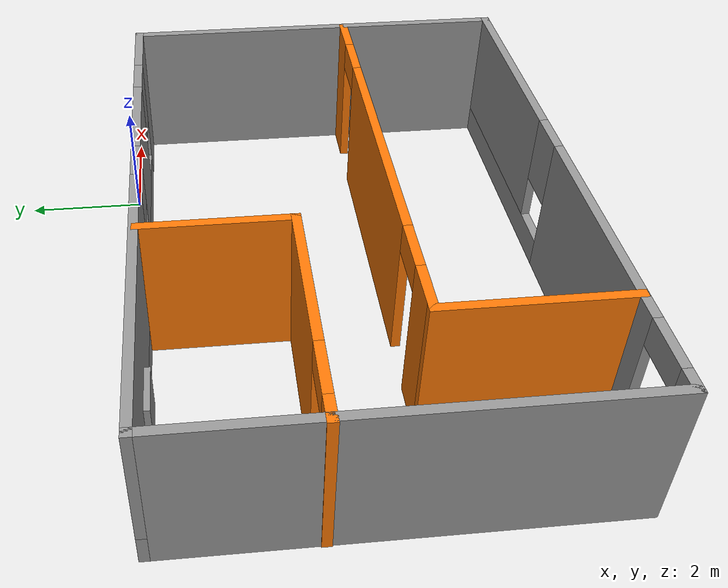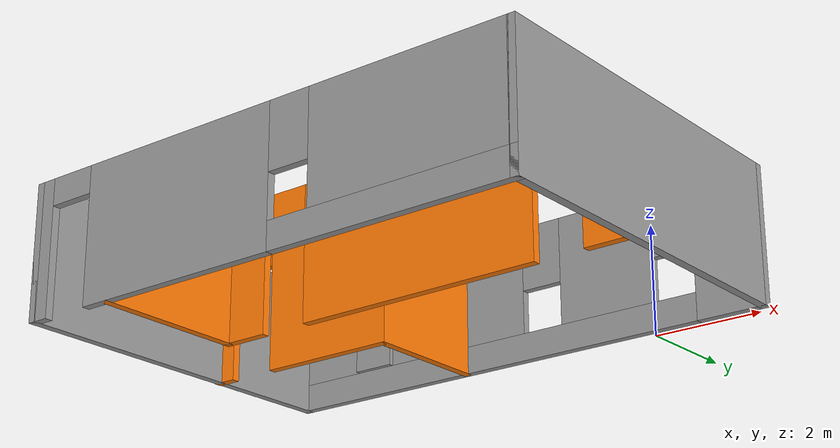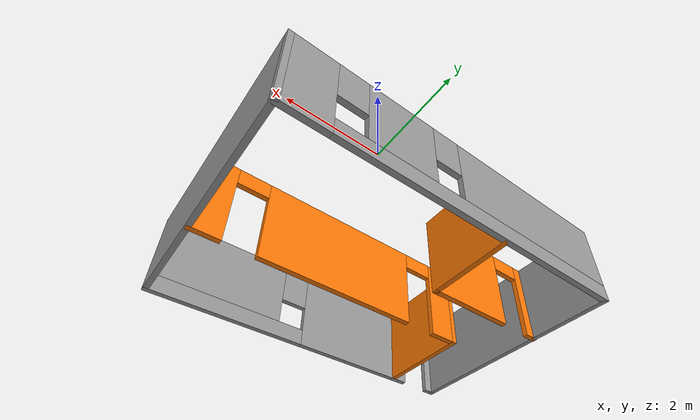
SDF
<?xml version='1.0'?>
<sdf version='1.6'>
  <model name='MyBuilding'>
    <pose frame=''>-2.78163 -3.6087 0 0 -0 0</pose>
    <link name='Wall_53'>
      <pose frame=''>0.008644 -3.425 0 0 -0 0</pose>
      <visual name='Wall_53_Visual_0'>
        <pose frame=''>-4.79387 0 1.25 0 -0 0</pose>
        <geometry>
          <box>
            <size>0.412255 0.15 2.5</size>
          </box>
        </geometry>
        <material>
          <script>
            <uri>file://media/materials/scripts/gazebo.material</uri>
            <name>Gazebo/Grey</name>
          </script>
          <ambient>1 1 1 1</ambient>
        </material>
        <meta>
          <layer>0</layer>
        </meta>
      </visual>
      <collision name='Wall_53_Collision_0'>
        <geometry>
          <box>
            <size>0.412255 0.15 2.5</size>
          </box>
        </geometry>
        <pose frame=''>-4.79387 0 1.25 0 -0 0</pose>
      </collision>
      <visual name='Wall_53_Visual_1'>
        <pose frame=''>-1.66895 0 1.25 0 -0 0</pose>
        <geometry>
          <box>
            <size>4.0376 0.15 2.5</size>
          </box>
        </geometry>
        <material>
          <script>
            <uri>file://media/materials/scripts/gazebo.material</uri>
            <name>Gazebo/Grey</name>
          </script>
          <ambient>1 1 1 1</ambient>
        </material>
        <meta>
          <layer>0</layer>
        </meta>
      </visual>
      <collision name='Wall_53_Collision_1'>
        <geometry>
          <box>
            <size>4.0376 0.15 2.5</size>
          </box>
        </geometry>
        <pose frame=''>-1.66895 0 1.25 0 -0 0</pose>
      </collision>
      <visual name='Wall_53_Visual_2'>
        <pose frame=''>2.67493 0 0.25 0 -0 0</pose>
        <geometry>
          <box>
            <size>4.65015 0.15 0.5</size>
          </box>
        </geometry>
        <material>
          <script>
            <uri>file://media/materials/scripts/gazebo.material</uri>
            <name>Gazebo/Grey</name>
          </script>
          <ambient>1 1 1 1</ambient>
        </material>
        <meta>
          <layer>0</layer>
        </meta>
      </visual>
      <collision name='Wall_53_Collision_2'>
        <geometry>
          <box>
            <size>4.65015 0.15 0.5</size>
          </box>
        </geometry>
        <pose frame=''>2.67493 0 0.25 0 -0 0</pose>
      </collision>
      <visual name='Wall_53_Visual_3'>
        <pose frame=''>3.07493 0 1.5 0 -0 0</pose>
        <geometry>
          <box>
            <size>3.85015 0.15 2</size>
          </box>
        </geometry>
        <material>
          <script>
            <uri>file://media/materials/scripts/gazebo.material</uri>
            <name>Gazebo/Grey</name>
          </script>
          <ambient>1 1 1 1</ambient>
        </material>
        <meta>
          <layer>0</layer>
        </meta>
      </visual>
      <collision name='Wall_53_Collision_3'>
        <geometry>
          <box>
            <size>3.85015 0.15 2</size>
          </box>
        </geometry>
        <pose frame=''>3.07493 0 1.5 0 -0 0</pose>
      </collision>
      <visual name='Wall_53_Visual_4'>
        <pose frame=''>0.749853 0 1.9 0 -0 0</pose>
        <geometry>
          <box>
            <size>0.8 0.15 1.2</size>
          </box>
        </geometry>
        <material>
          <script>
            <uri>file://media/materials/scripts/gazebo.material</uri>
            <name>Gazebo/Grey</name>
          </script>
          <ambient>1 1 1 1</ambient>
        </material>
        <meta>
          <layer>0</layer>
        </meta>
      </visual>
      <collision name='Wall_53_Collision_4'>
        <geometry>
          <box>
            <size>0.8 0.15 1.2</size>
          </box>
        </geometry>
        <pose frame=''>0.749853 0 1.9 0 -0 0</pose>
      </collision>
      <visual name='Wall_53_Visual_5'>
        <pose frame=''>-4.13774 0 2.25 0 -0 0</pose>
        <geometry>
          <box>
            <size>0.9 0.15 0.5</size>
          </box>
        </geometry>
        <material>
          <script>
            <uri>file://media/materials/scripts/gazebo.material</uri>
            <name>Gazebo/Grey</name>
          </script>
          <ambient>1 1 1 1</ambient>
        </material>
        <meta>
          <layer>0</layer>
        </meta>
      </visual>
      <collision name='Wall_53_Collision_5'>
        <geometry>
          <box>
            <size>0.9 0.15 0.5</size>
          </box>
        </geometry>
        <pose frame=''>-4.13774 0 2.25 0 -0 0</pose>
      </collision>
    </link>
    <link name='Wall_54'>
      <collision name='Wall_54_Collision'>
        <geometry>
          <box>
            <size>7 0.15 2.5</size>
          </box>
        </geometry>
        <pose frame=''>0 0 1.25 0 -0 0</pose>
      </collision>
      <visual name='Wall_54_Visual'>
        <pose frame=''>0 0 1.25 0 -0 0</pose>
        <geometry>
          <box>
            <size>7 0.15 2.5</size>
          </box>
        </geometry>
        <material>
          <script>
            <uri>file://media/materials/scripts/gazebo.material</uri>
            <name>Gazebo/Grey</name>
          </script>
          <ambient>1 1 1 1</ambient>
        </material>
        <meta>
          <layer>0</layer>
        </meta>
      </visual>
      <pose frame=''>4.93364 0 0 0 -0 1.5708</pose>
    </link>
    <link name='Wall_55'>
      <pose frame=''>0.008644 3.425 0 0 -0 3.14159</pose>
      <visual name='Wall_55_Visual_0'>
        <pose frame=''>-4.36219 0 1.25 0 -0 0</pose>
        <geometry>
          <box>
            <size>1.27561 0.15 2.5</size>
          </box>
        </geometry>
        <material>
          <script>
            <uri>file://media/materials/scripts/gazebo.material</uri>
            <name>Gazebo/Grey</name>
          </script>
          <ambient>1 1 1 1</ambient>
        </material>
        <meta>
          <layer>0</layer>
        </meta>
      </visual>
      <collision name='Wall_55_Collision_0'>
        <geometry>
          <box>
            <size>1.27561 0.15 2.5</size>
          </box>
        </geometry>
        <pose frame=''>-4.36219 0 1.25 0 -0 0</pose>
      </collision>
      <visual name='Wall_55_Visual_1'>
        <pose frame=''>0.637805 0 0.25 0 -0 0</pose>
        <geometry>
          <box>
            <size>8.72439 0.15 0.5</size>
          </box>
        </geometry>
        <material>
          <script>
            <uri>file://media/materials/scripts/gazebo.material</uri>
            <name>Gazebo/Grey</name>
          </script>
          <ambient>1 1 1 1</ambient>
        </material>
        <meta>
          <layer>0</layer>
        </meta>
      </visual>
      <collision name='Wall_55_Collision_1'>
        <geometry>
          <box>
            <size>8.72439 0.15 0.5</size>
          </box>
        </geometry>
        <pose frame=''>0.637805 0 0.25 0 -0 0</pose>
      </collision>
      <visual name='Wall_55_Visual_2'>
        <pose frame=''>-1.97678 0 1.5 0 -0 0</pose>
        <geometry>
          <box>
            <size>1.89522 0.15 2</size>
          </box>
        </geometry>
        <material>
          <script>
            <uri>file://media/materials/scripts/gazebo.material</uri>
            <name>Gazebo/Grey</name>
          </script>
          <ambient>1 1 1 1</ambient>
        </material>
        <meta>
          <layer>0</layer>
        </meta>
      </visual>
      <collision name='Wall_55_Collision_2'>
        <geometry>
          <box>
            <size>1.89522 0.15 2</size>
          </box>
        </geometry>
        <pose frame=''>-1.97678 0 1.5 0 -0 0</pose>
      </collision>
      <visual name='Wall_55_Visual_3'>
        <pose frame=''>2.38541 0 1.5 0 -0 0</pose>
        <geometry>
          <box>
            <size>5.22917 0.15 2</size>
          </box>
        </geometry>
        <material>
          <script>
            <uri>file://media/materials/scripts/gazebo.material</uri>
            <name>Gazebo/Grey</name>
          </script>
          <ambient>1 1 1 1</ambient>
        </material>
        <meta>
          <layer>0</layer>
        </meta>
      </visual>
      <collision name='Wall_55_Collision_3'>
        <geometry>
          <box>
            <size>5.22917 0.15 2</size>
          </box>
        </geometry>
        <pose frame=''>2.38541 0 1.5 0 -0 0</pose>
      </collision>
      <visual name='Wall_55_Visual_4'>
        <pose frame=''>-3.32439 0 1.9 0 -0 0</pose>
        <geometry>
          <box>
            <size>0.8 0.15 1.2</size>
          </box>
        </geometry>
        <material>
          <script>
            <uri>file://media/materials/scripts/gazebo.material</uri>
            <name>Gazebo/Grey</name>
          </script>
          <ambient>1 1 1 1</ambient>
        </material>
        <meta>
          <layer>0</layer>
        </meta>
      </visual>
      <collision name='Wall_55_Collision_4'>
        <geometry>
          <box>
            <size>0.8 0.15 1.2</size>
          </box>
        </geometry>
        <pose frame=''>-3.32439 0 1.9 0 -0 0</pose>
      </collision>
      <visual name='Wall_55_Visual_5'>
        <pose frame=''>-0.629171 0 1.9 0 -0 0</pose>
        <geometry>
          <box>
            <size>0.8 0.15 1.2</size>
          </box>
        </geometry>
        <material>
          <script>
            <uri>file://media/materials/scripts/gazebo.material</uri>
            <name>Gazebo/Grey</name>
          </script>
          <ambient>1 1 1 1</ambient>
        </material>
        <meta>
          <layer>0</layer>
        </meta>
      </visual>
      <collision name='Wall_55_Collision_5'>
        <geometry>
          <box>
            <size>0.8 0.15 1.2</size>
          </box>
        </geometry>
        <pose frame=''>-0.629171 0 1.9 0 -0 0</pose>
      </collision>
    </link>
    <link name='Wall_58'>
      <collision name='Wall_58_Collision'>
        <geometry>
          <box>
            <size>7 0.15 2.5</size>
          </box>
        </geometry>
        <pose frame=''>0 0 1.25 0 -0 0</pose>
      </collision>
      <visual name='Wall_58_Visual'>
        <pose frame=''>0 0 1.25 0 -0 0</pose>
        <geometry>
          <box>
            <size>7 0.15 2.5</size>
          </box>
        </geometry>
        <material>
          <script>
            <uri>file://media/materials/scripts/gazebo.material</uri>
            <name>Gazebo/Grey</name>
          </script>
          <ambient>1 1 1 1</ambient>
        </material>
        <meta>
          <layer>0</layer>
        </meta>
      </visual>
      <pose frame=''>-4.91636 0 0 0 0 -1.5708</pose>
    </link>
    <link name='Wall_60'>
      <pose frame=''>-3.00864 1.02827 0 0 -0 0</pose>
      <visual name='Wall_60_Visual_0'>
        <pose frame=''>-1.77517 0 1.25 0 -0 0</pose>
        <geometry>
          <box>
            <size>0.449656 0.15 2.5</size>
          </box>
        </geometry>
        <material>
          <script>
            <uri>file://media/materials/scripts/gazebo.material</uri>
            <name>Gazebo/Grey</name>
          </script>
          <ambient>0.996078 0.47451 0.0196078 1</ambient>
        </material>
        <meta>
          <layer>0</layer>
        </meta>
      </visual>
      <collision name='Wall_60_Collision_0'>
        <geometry>
          <box>
            <size>0.449656 0.15 2.5</size>
          </box>
        </geometry>
        <pose frame=''>-1.77517 0 1.25 0 -0 0</pose>
      </collision>
      <visual name='Wall_60_Visual_1'>
        <pose frame=''>0.674828 0 1.25 0 -0 0</pose>
        <geometry>
          <box>
            <size>2.65034 0.15 2.5</size>
          </box>
        </geometry>
        <material>
          <script>
            <uri>file://media/materials/scripts/gazebo.material</uri>
            <name>Gazebo/Grey</name>
          </script>
          <ambient>0.996078 0.47451 0.0196078 1</ambient>
        </material>
        <meta>
          <layer>0</layer>
        </meta>
      </visual>
      <collision name='Wall_60_Collision_1'>
        <geometry>
          <box>
            <size>2.65034 0.15 2.5</size>
          </box>
        </geometry>
        <pose frame=''>0.674828 0 1.25 0 -0 0</pose>
      </collision>
      <visual name='Wall_60_Visual_2'>
        <pose frame=''>-1.10034 0 2.25 0 -0 0</pose>
        <geometry>
          <box>
            <size>0.9 0.15 0.5</size>
          </box>
        </geometry>
        <material>
          <script>
            <uri>file://media/materials/scripts/gazebo.material</uri>
            <name>Gazebo/Grey</name>
          </script>
          <ambient>0.996078 0.47451 0.0196078 1</ambient>
        </material>
        <meta>
          <layer>0</layer>
        </meta>
      </visual>
      <collision name='Wall_60_Collision_2'>
        <geometry>
          <box>
            <size>0.9 0.15 0.5</size>
          </box>
        </geometry>
        <pose frame=''>-1.10034 0 2.25 0 -0 0</pose>
      </collision>
    </link>
    <link name='Wall_61'>
      <collision name='Wall_61_Collision'>
        <geometry>
          <box>
            <size>2.5 0.15 2.5</size>
          </box>
        </geometry>
        <pose frame=''>0 0 1.25 0 -0 0</pose>
      </collision>
      <visual name='Wall_61_Visual'>
        <pose frame=''>0 0 1.25 0 -0 0</pose>
        <geometry>
          <box>
            <size>2.5 0.15 2.5</size>
          </box>
        </geometry>
        <material>
          <script>
            <uri>file://media/materials/scripts/gazebo.material</uri>
            <name>Gazebo/Grey</name>
          </script>
          <ambient>0.996078 0.47451 0.0196078 1</ambient>
        </material>
        <meta>
          <layer>0</layer>
        </meta>
      </visual>
      <pose frame=''>-1.08364 2.20327 0 0 -0 1.5708</pose>
    </link>
    <link name='Wall_63'>
      <collision name='Wall_63_Collision'>
        <geometry>
          <box>
            <size>3 0.15 2.5</size>
          </box>
        </geometry>
        <pose frame=''>0 0 1.25 0 -0 0</pose>
      </collision>
      <visual name='Wall_63_Visual'>
        <pose frame=''>0 0 1.25 0 -0 0</pose>
        <geometry>
          <box>
            <size>3 0.15 2.5</size>
          </box>
        </geometry>
        <material>
          <script>
            <uri>file://media/materials/scripts/gazebo.material</uri>
            <name>Gazebo/Grey</name>
          </script>
          <ambient>0.996078 0.47451 0.0196078 1</ambient>
        </material>
        <meta>
          <layer>0</layer>
        </meta>
      </visual>
      <pose frame=''>-3.20388 -1.99183 0 0 -0 1.5708</pose>
    </link>
    <link name='Wall_64'>
      <pose frame=''>0.846123 -0.566832 0 0 -0 0</pose>
      <visual name='Wall_64_Visual_0'>
        <pose frame=''>-3.65881 0 1.25 0 -0 0</pose>
        <geometry>
          <box>
            <size>0.932382 0.15 2.5</size>
          </box>
        </geometry>
        <material>
          <script>
            <uri>file://media/materials/scripts/gazebo.material</uri>
            <name>Gazebo/Grey</name>
          </script>
          <ambient>0.996078 0.47451 0.0196078 1</ambient>
        </material>
        <meta>
          <layer>0</layer>
        </meta>
      </visual>
      <collision name='Wall_64_Collision_0'>
        <geometry>
          <box>
            <size>0.932382 0.15 2.5</size>
          </box>
        </geometry>
        <pose frame=''>-3.65881 0 1.25 0 -0 0</pose>
      </collision>
      <visual name='Wall_64_Visual_1'>
        <pose frame=''>0.053169 0 1.25 0 -0 0</pose>
        <geometry>
          <box>
            <size>4.69157 0.15 2.5</size>
          </box>
        </geometry>
        <material>
          <script>
            <uri>file://media/materials/scripts/gazebo.material</uri>
            <name>Gazebo/Grey</name>
          </script>
          <ambient>0.996078 0.47451 0.0196078 1</ambient>
        </material>
        <meta>
          <layer>0</layer>
        </meta>
      </visual>
      <collision name='Wall_64_Collision_1'>
        <geometry>
          <box>
            <size>4.69157 0.15 2.5</size>
          </box>
        </geometry>
        <pose frame=''>0.053169 0 1.25 0 -0 0</pose>
      </collision>
      <visual name='Wall_64_Visual_2'>
        <pose frame=''>3.71198 0 1.25 0 -0 0</pose>
        <geometry>
          <box>
            <size>0.826045 0.15 2.5</size>
          </box>
        </geometry>
        <material>
          <script>
            <uri>file://media/materials/scripts/gazebo.material</uri>
            <name>Gazebo/Grey</name>
          </script>
          <ambient>0.996078 0.47451 0.0196078 1</ambient>
        </material>
        <meta>
          <layer>0</layer>
        </meta>
      </visual>
      <collision name='Wall_64_Collision_2'>
        <geometry>
          <box>
            <size>0.826045 0.15 2.5</size>
          </box>
        </geometry>
        <pose frame=''>3.71198 0 1.25 0 -0 0</pose>
      </collision>
      <visual name='Wall_64_Visual_3'>
        <pose frame=''>-2.74262 0 2.25 0 -0 0</pose>
        <geometry>
          <box>
            <size>0.9 0.15 0.5</size>
          </box>
        </geometry>
        <material>
          <script>
            <uri>file://media/materials/scripts/gazebo.material</uri>
            <name>Gazebo/Grey</name>
          </script>
          <ambient>0.996078 0.47451 0.0196078 1</ambient>
        </material>
        <meta>
          <layer>0</layer>
        </meta>
      </visual>
      <collision name='Wall_64_Collision_3'>
        <geometry>
          <box>
            <size>0.9 0.15 0.5</size>
          </box>
        </geometry>
        <pose frame=''>-2.74262 0 2.25 0 -0 0</pose>
      </collision>
      <visual name='Wall_64_Visual_4'>
        <pose frame=''>2.84896 0 2.25 0 -0 0</pose>
        <geometry>
          <box>
            <size>0.9 0.15 0.5</size>
          </box>
        </geometry>
        <material>
          <script>
            <uri>file://media/materials/scripts/gazebo.material</uri>
            <name>Gazebo/Grey</name>
          </script>
          <ambient>0.996078 0.47451 0.0196078 1</ambient>
        </material>
        <meta>
          <layer>0</layer>
        </meta>
      </visual>
      <collision name='Wall_64_Collision_4'>
        <geometry>
          <box>
            <size>0.9 0.15 0.5</size>
          </box>
        </geometry>
        <pose frame=''>2.84896 0 2.25 0 -0 0</pose>
      </collision>
    </link>
    <link name='Window_10'>
      <collision name='Window_10_Collision'>
        <geometry>
          <box>
            <size>0.8 0.17 0.8</size>
          </box>
        </geometry>
        <pose frame=''>0 0 0.4 0 -0 0</pose>
      </collision>
      <visual name='Window_10_Visual'>
        <pose frame=''>0 0 0.4 0 -0 0</pose>
        <geometry>
          <box>
            <size>0.8 0.17 0.8</size>
          </box>
        </geometry>
        <material>
          <script>
            <uri>file://media/materials/scripts/gazebo.material</uri>
            <name>Gazebo/Grey</name>
          </script>
        </material>
      </visual>
      <pose frame=''>-3.16365 3.34133 0.5 0 -0 0</pose>
    </link>
    <static>1</static>
  </model>
</sdf>
